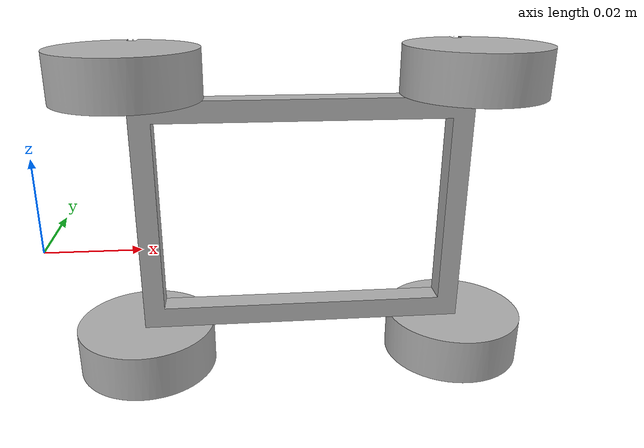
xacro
<?xml version="1.0" ?>
<robot name="gazibo_test_rover" xmlns:xacro="http://www.ros.org/wiki/xacro">

<xacro:include filename="$(find gazibo_test_rover_description)/urdf/materials.xacro" />
<xacro:include filename="$(find gazibo_test_rover_description)/urdf/gazibo_test_rover.trans" />
<xacro:include filename="$(find gazibo_test_rover_description)/urdf/gazibo_test_rover.gazebo" />
<link name="base_link">
  <inertial>
    <origin xyz="0.0541795604712261 0.002739223187287934 0.006059662716060437" rpy="0 0 0"/>
    <mass value="0.00523288770151423"/>
    <inertia ixx="2e-06" iyy="5e-06" izz="3e-06" ixy="-0.0" iyz="0.0" ixz="0.0"/>
  </inertial>
  <visual>
    <origin xyz="0 0 0" rpy="0 0 0"/>
    <geometry>
      <mesh filename="package://gazibo_test_rover_description/meshes/base_link.stl" scale="0.001 0.001 0.001"/>
    </geometry>
    <material name="silver"/>
  </visual>
  <collision>
    <origin xyz="0 0 0" rpy="0 0 0"/>
    <geometry>
      <mesh filename="package://gazibo_test_rover_description/meshes/base_link.stl" scale="0.001 0.001 0.001"/>
    </geometry>
  </collision>
</link>

<link name="WHEEL_1">
  <inertial>
    <origin xyz="-1.0529822351442591e-05 1.0683473075607814e-05 0.0049951686371081" rpy="0 0 0"/>
    <mass value="0.006566838653195734"/>
    <inertia ixx="0.0" iyy="0.0" izz="1e-06" ixy="-0.0" iyz="-0.0" ixz="0.0"/>
  </inertial>
  <visual>
    <origin xyz="-0.01918 -0.002739 -0.03106" rpy="0 0 0"/>
    <geometry>
      <mesh filename="package://gazibo_test_rover_description/meshes/WHEEL_1.stl" scale="0.001 0.001 0.001"/>
    </geometry>
    <material name="silver"/>
  </visual>
  <collision>
    <origin xyz="-0.01918 -0.002739 -0.03106" rpy="0 0 0"/>
    <geometry>
      <mesh filename="package://gazibo_test_rover_description/meshes/WHEEL_1.stl" scale="0.001 0.001 0.001"/>
    </geometry>
  </collision>
</link>

<link name="Component1_Mirror__1">
  <inertial>
    <origin xyz="-1.0529822354513052e-05 1.0683473078512175e-05 -0.0049958432049872735" rpy="0 0 0"/>
    <mass value="0.006566838653195734"/>
    <inertia ixx="0.0" iyy="0.0" izz="1e-06" ixy="-0.0" iyz="0.0" ixz="-0.0"/>
  </inertial>
  <visual>
    <origin xyz="-0.01918 -0.002739 0.01894" rpy="0 0 0"/>
    <geometry>
      <mesh filename="package://gazibo_test_rover_description/meshes/Component1_Mirror__1.stl" scale="0.001 0.001 0.001"/>
    </geometry>
    <material name="silver"/>
  </visual>
  <collision>
    <origin xyz="-0.01918 -0.002739 0.01894" rpy="0 0 0"/>
    <geometry>
      <mesh filename="package://gazibo_test_rover_description/meshes/Component1_Mirror__1.stl" scale="0.001 0.001 0.001"/>
    </geometry>
  </collision>
</link>

<link name="Component1_Mirror___1__1">
  <inertial>
    <origin xyz="-1.4757718580005186e-05 -2.2710147707734503e-06 0.004995168637108156" rpy="0 0 0"/>
    <mass value="0.006566838653195734"/>
    <inertia ixx="0.0" iyy="0.0" izz="1e-06" ixy="0.0" iyz="0.0" ixz="0.0"/>
  </inertial>
  <visual>
    <origin xyz="-0.08918 -0.002739 -0.03106" rpy="0 0 0"/>
    <geometry>
      <mesh filename="package://gazibo_test_rover_description/meshes/Component1_Mirror___1__1.stl" scale="0.001 0.001 0.001"/>
    </geometry>
    <material name="silver"/>
  </visual>
  <collision>
    <origin xyz="-0.08918 -0.002739 -0.03106" rpy="0 0 0"/>
    <geometry>
      <mesh filename="package://gazibo_test_rover_description/meshes/Component1_Mirror___1__1.stl" scale="0.001 0.001 0.001"/>
    </geometry>
  </collision>
</link>

<link name="Component1_Mirror__Mirror__1">
  <inertial>
    <origin xyz="-1.4757718584224033e-05 -2.2710147692239085e-06 -0.004995843204987256" rpy="0 0 0"/>
    <mass value="0.006566838653195734"/>
    <inertia ixx="0.0" iyy="0.0" izz="1e-06" ixy="0.0" iyz="-0.0" ixz="-0.0"/>
  </inertial>
  <visual>
    <origin xyz="-0.08918 -0.002739 0.01894" rpy="0 0 0"/>
    <geometry>
      <mesh filename="package://gazibo_test_rover_description/meshes/Component1_Mirror__Mirror__1.stl" scale="0.001 0.001 0.001"/>
    </geometry>
    <material name="silver"/>
  </visual>
  <collision>
    <origin xyz="-0.08918 -0.002739 0.01894" rpy="0 0 0"/>
    <geometry>
      <mesh filename="package://gazibo_test_rover_description/meshes/Component1_Mirror__Mirror__1.stl" scale="0.001 0.001 0.001"/>
    </geometry>
  </collision>
</link>

<joint name="Revolute 1" type="continuous">
  <origin xyz="0.01918 0.002739 0.03106" rpy="0 0 0"/>
  <parent link="base_link"/>
  <child link="WHEEL_1"/>
  <axis xyz="0.0 0.0 1.0"/>
</joint>

<joint name="Revolute 2" type="continuous">
  <origin xyz="0.01918 0.002739 -0.01894" rpy="0 0 0"/>
  <parent link="base_link"/>
  <child link="Component1_Mirror__1"/>
  <axis xyz="-0.0 -0.0 -1.0"/>
</joint>

<joint name="Revolute 3" type="continuous">
  <origin xyz="0.08918 0.002739 0.03106" rpy="0 0 0"/>
  <parent link="base_link"/>
  <child link="Component1_Mirror___1__1"/>
  <axis xyz="0.0 0.0 1.0"/>
</joint>

<joint name="Revolute 4" type="continuous">
  <origin xyz="0.08918 0.002739 -0.01894" rpy="0 0 0"/>
  <parent link="base_link"/>
  <child link="Component1_Mirror__Mirror__1"/>
  <axis xyz="-0.0 -0.0 -1.0"/>
</joint>

</robot>

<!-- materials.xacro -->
<robot name="gazibo_test_rover" xmlns:xacro="http://www.ros.org/wiki/xacro" >

<material name="silver">
  <color rgba="0.700 0.700 0.700 1.000"/>
</material>

</robot>

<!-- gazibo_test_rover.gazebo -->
<robot name="gazibo_test_rover" xmlns:xacro="http://www.ros.org/wiki/xacro" >

<xacro:property name="body_color" value="Gazebo/Silver" />

<gazebo>
  <plugin name="control" filename="libgazebo_ros_control.so"/>
</gazebo>
<gazebo reference="base_link">
  <material>${body_color}</material>
  <mu1>0.2</mu1>
  <mu2>0.2</mu2>
  <selfCollide>true</selfCollide>
  <gravity>true</gravity>
</gazebo>

<gazebo reference="WHEEL_1">
  <material>${body_color}</material>
  <mu1>0.2</mu1>
  <mu2>0.2</mu2>
  <selfCollide>true</selfCollide>
</gazebo>

<gazebo reference="Component1_Mirror__1">
  <material>${body_color}</material>
  <mu1>0.2</mu1>
  <mu2>0.2</mu2>
  <selfCollide>true</selfCollide>
</gazebo>

<gazebo reference="Component1_Mirror___1__1">
  <material>${body_color}</material>
  <mu1>0.2</mu1>
  <mu2>0.2</mu2>
  <selfCollide>true</selfCollide>
</gazebo>

<gazebo reference="Component1_Mirror__Mirror__1">
  <material>${body_color}</material>
  <mu1>0.2</mu1>
  <mu2>0.2</mu2>
  <selfCollide>true</selfCollide>
</gazebo>

</robot>
